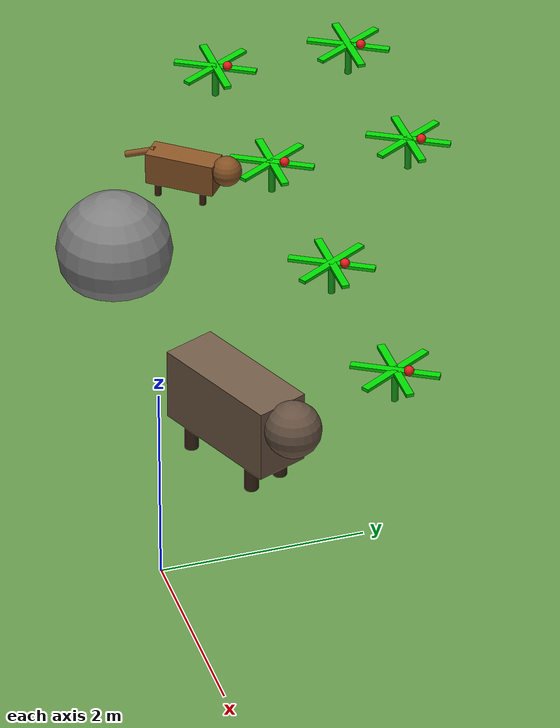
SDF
<sdf version="1.6">
 <world name="enhanced_farm_world">
  <include><uri>model://sun</uri></include>
  <model name="ground_plane">
   <static>true</static>
   <pose>0 0 -0.01 0 0 0</pose>
   <link name="link">
    <collision name="collision">
     <geometry><plane><normal>0 0 1</normal><size>200 200</size></plane></geometry>
     <surface><friction><ode><mu>0.8</mu><mu2>0.8</mu2></ode></friction></surface>
    </collision>
    <visual name="visual">
     <geometry><plane><normal>0 0 1</normal><size>200 200</size></plane></geometry>
     <material>
      <ambient>0.3 0.5 0.2 1</ambient>
      <diffuse>0.4 0.6 0.3 1</diffuse>
      <specular>0.01 0.01 0.01 1</specular>
     </material>
    </visual>
   </link>
  </model>
  <model name="crop_row1_1">
   <static>true</static>
   <pose>-8 3 0 0 0 0</pose>
   <link name="crop_stem">
    <pose>0 0 0.15 0 0 0</pose>
    <collision name="collision">
     <geometry><cylinder><radius>0.035</radius><length>0.30</length></cylinder></geometry>
    </collision>
    <visual name="visual">
     <geometry><cylinder><radius>0.035</radius><length>0.30</length></cylinder></geometry>
     <material><ambient>0.05 0.45 0.05 1</ambient><diffuse>0.08 0.65 0.08 1</diffuse></material>
    </visual>
   </link>
   <link name="leaf_1">
    <pose>0 0 0.35 0 0 0</pose>
    <visual name="visual">
     <geometry><box><size>0.90 0.08 0.035</size></box></geometry>
     <material><ambient>0.0 0.55 0.0 1</ambient><diffuse>0.0 0.85 0.0 1</diffuse></material>
    </visual>
   </link>
   <link name="leaf_2">
    <pose>0 0 0.35 0 0 1.047</pose>
    <visual name="visual">
     <geometry><box><size>0.90 0.08 0.035</size></box></geometry>
     <material><ambient>0.0 0.55 0.0 1</ambient><diffuse>0.0 0.85 0.0 1</diffuse></material>
    </visual>
   </link>
   <link name="leaf_3">
    <pose>0 0 0.35 0 0 2.094</pose>
    <visual name="visual">
     <geometry><box><size>0.90 0.08 0.035</size></box></geometry>
     <material><ambient>0.0 0.55 0.0 1</ambient><diffuse>0.0 0.85 0.0 1</diffuse></material>
    </visual>
   </link>
   <link name="small_fruit">
    <pose>0.18 0.08 0.45 0 0 0</pose>
    <visual name="visual">
     <geometry><sphere><radius>0.05</radius></sphere></geometry>
     <material><ambient>0.8 0.05 0.05 1</ambient><diffuse>0.9 0.1 0.1 1</diffuse></material>
    </visual>
   </link>
   <link name="crop_protection_collision">
    <pose>0 0 0.65 0 0 0</pose>
    <collision name="collision">
     <geometry><cylinder><radius>0.30</radius><length>1.30</length></cylinder></geometry>
    </collision>
   </link>
  </model>
  <model name="crop_row1_2">
   <static>true</static>
   <pose>-6 3 0 0 0 0</pose>
   <link name="crop_stem">
    <pose>0 0 0.15 0 0 0</pose>
    <collision name="collision">
     <geometry><cylinder><radius>0.035</radius><length>0.30</length></cylinder></geometry>
    </collision>
    <visual name="visual">
     <geometry><cylinder><radius>0.035</radius><length>0.30</length></cylinder></geometry>
     <material><ambient>0.05 0.45 0.05 1</ambient><diffuse>0.08 0.65 0.08 1</diffuse></material>
    </visual>
   </link>
   <link name="leaf_1">
    <pose>0 0 0.35 0 0 0</pose>
    <visual name="visual">
     <geometry><box><size>0.90 0.08 0.035</size></box></geometry>
     <material><ambient>0.0 0.55 0.0 1</ambient><diffuse>0.0 0.85 0.0 1</diffuse></material>
    </visual>
   </link>
   <link name="leaf_2">
    <pose>0 0 0.35 0 0 1.047</pose>
    <visual name="visual">
     <geometry><box><size>0.90 0.08 0.035</size></box></geometry>
     <material><ambient>0.0 0.55 0.0 1</ambient><diffuse>0.0 0.85 0.0 1</diffuse></material>
    </visual>
   </link>
   <link name="leaf_3">
    <pose>0 0 0.35 0 0 2.094</pose>
    <visual name="visual">
     <geometry><box><size>0.90 0.08 0.035</size></box></geometry>
     <material><ambient>0.0 0.55 0.0 1</ambient><diffuse>0.0 0.85 0.0 1</diffuse></material>
    </visual>
   </link>
   <link name="small_fruit">
    <pose>0.18 0.08 0.45 0 0 0</pose>
    <visual name="visual">
     <geometry><sphere><radius>0.05</radius></sphere></geometry>
     <material><ambient>0.8 0.05 0.05 1</ambient><diffuse>0.9 0.1 0.1 1</diffuse></material>
    </visual>
   </link>
   <link name="crop_protection_collision">
    <pose>0 0 0.65 0 0 0</pose>
    <collision name="collision">
     <geometry><cylinder><radius>0.30</radius><length>1.30</length></cylinder></geometry>
    </collision>
   </link>
  </model>
  <model name="crop_row1_3">
   <static>true</static>
   <pose>-4 3 0 0 0 0</pose>
   <link name="crop_stem">
    <pose>0 0 0.15 0 0 0</pose>
    <collision name="collision">
     <geometry><cylinder><radius>0.035</radius><length>0.30</length></cylinder></geometry>
    </collision>
    <visual name="visual">
     <geometry><cylinder><radius>0.035</radius><length>0.30</length></cylinder></geometry>
     <material><ambient>0.05 0.45 0.05 1</ambient><diffuse>0.08 0.65 0.08 1</diffuse></material>
    </visual>
   </link>
   <link name="leaf_1">
    <pose>0 0 0.35 0 0 0</pose>
    <visual name="visual">
     <geometry><box><size>0.90 0.08 0.035</size></box></geometry>
     <material><ambient>0.0 0.55 0.0 1</ambient><diffuse>0.0 0.85 0.0 1</diffuse></material>
    </visual>
   </link>
   <link name="leaf_2">
    <pose>0 0 0.35 0 0 1.047</pose>
    <visual name="visual">
     <geometry><box><size>0.90 0.08 0.035</size></box></geometry>
     <material><ambient>0.0 0.55 0.0 1</ambient><diffuse>0.0 0.85 0.0 1</diffuse></material>
    </visual>
   </link>
   <link name="leaf_3">
    <pose>0 0 0.35 0 0 2.094</pose>
    <visual name="visual">
     <geometry><box><size>0.90 0.08 0.035</size></box></geometry>
     <material><ambient>0.0 0.55 0.0 1</ambient><diffuse>0.0 0.85 0.0 1</diffuse></material>
    </visual>
   </link>
   <link name="small_fruit">
    <pose>0.18 0.08 0.45 0 0 0</pose>
    <visual name="visual">
     <geometry><sphere><radius>0.05</radius></sphere></geometry>
     <material><ambient>0.8 0.05 0.05 1</ambient><diffuse>0.9 0.1 0.1 1</diffuse></material>
    </visual>
   </link>
   <link name="crop_protection_collision">
    <pose>0 0 0.65 0 0 0</pose>
    <collision name="collision">
     <geometry><cylinder><radius>0.30</radius><length>1.30</length></cylinder></geometry>
    </collision>
   </link>
  </model>
  <model name="crop_row1_4">
   <static>true</static>
   <pose>-2 3 0 0 0 0</pose>
   <link name="crop_stem">
    <pose>0 0 0.15 0 0 0</pose>
    <collision name="collision">
     <geometry><cylinder><radius>0.035</radius><length>0.30</length></cylinder></geometry>
    </collision>
    <visual name="visual">
     <geometry><cylinder><radius>0.035</radius><length>0.30</length></cylinder></geometry>
     <material><ambient>0.05 0.45 0.05 1</ambient><diffuse>0.08 0.65 0.08 1</diffuse></material>
    </visual>
   </link>
   <link name="leaf_1">
    <pose>0 0 0.35 0 0 0</pose>
    <visual name="visual">
     <geometry><box><size>0.90 0.08 0.035</size></box></geometry>
     <material><ambient>0.0 0.55 0.0 1</ambient><diffuse>0.0 0.85 0.0 1</diffuse></material>
    </visual>
   </link>
   <link name="leaf_2">
    <pose>0 0 0.35 0 0 1.047</pose>
    <visual name="visual">
     <geometry><box><size>0.90 0.08 0.035</size></box></geometry>
     <material><ambient>0.0 0.55 0.0 1</ambient><diffuse>0.0 0.85 0.0 1</diffuse></material>
    </visual>
   </link>
   <link name="leaf_3">
    <pose>0 0 0.35 0 0 2.094</pose>
    <visual name="visual">
     <geometry><box><size>0.90 0.08 0.035</size></box></geometry>
     <material><ambient>0.0 0.55 0.0 1</ambient><diffuse>0.0 0.85 0.0 1</diffuse></material>
    </visual>
   </link>
   <link name="small_fruit">
    <pose>0.18 0.08 0.45 0 0 0</pose>
    <visual name="visual">
     <geometry><sphere><radius>0.05</radius></sphere></geometry>
     <material><ambient>0.8 0.05 0.05 1</ambient><diffuse>0.9 0.1 0.1 1</diffuse></material>
    </visual>
   </link>
   <link name="crop_protection_collision">
    <pose>0 0 0.65 0 0 0</pose>
    <collision name="collision">
     <geometry><cylinder><radius>0.30</radius><length>1.30</length></cylinder></geometry>
    </collision>
   </link>
  </model>
  <model name="crop_row2_1">
   <static>true</static>
   <pose>-8 4.5 0 0 0 0</pose>
   <link name="crop_stem">
    <pose>0 0 0.15 0 0 0</pose>
    <collision name="collision">
     <geometry><cylinder><radius>0.035</radius><length>0.30</length></cylinder></geometry>
    </collision>
    <visual name="visual">
     <geometry><cylinder><radius>0.035</radius><length>0.30</length></cylinder></geometry>
     <material><ambient>0.05 0.45 0.05 1</ambient><diffuse>0.08 0.65 0.08 1</diffuse></material>
    </visual>
   </link>
   <link name="leaf_1">
    <pose>0 0 0.35 0 0 0</pose>
    <visual name="visual">
     <geometry><box><size>0.90 0.08 0.035</size></box></geometry>
     <material><ambient>0.0 0.55 0.0 1</ambient><diffuse>0.0 0.85 0.0 1</diffuse></material>
    </visual>
   </link>
   <link name="leaf_2">
    <pose>0 0 0.35 0 0 1.047</pose>
    <visual name="visual">
     <geometry><box><size>0.90 0.08 0.035</size></box></geometry>
     <material><ambient>0.0 0.55 0.0 1</ambient><diffuse>0.0 0.85 0.0 1</diffuse></material>
    </visual>
   </link>
   <link name="leaf_3">
    <pose>0 0 0.35 0 0 2.094</pose>
    <visual name="visual">
     <geometry><box><size>0.90 0.08 0.035</size></box></geometry>
     <material><ambient>0.0 0.55 0.0 1</ambient><diffuse>0.0 0.85 0.0 1</diffuse></material>
    </visual>
   </link>
   <link name="small_fruit">
    <pose>0.18 0.08 0.45 0 0 0</pose>
    <visual name="visual">
     <geometry><sphere><radius>0.05</radius></sphere></geometry>
     <material><ambient>0.8 0.05 0.05 1</ambient><diffuse>0.9 0.1 0.1 1</diffuse></material>
    </visual>
   </link>
   <link name="crop_protection_collision">
    <pose>0 0 0.65 0 0 0</pose>
    <collision name="collision">
     <geometry><cylinder><radius>0.30</radius><length>1.30</length></cylinder></geometry>
    </collision>
   </link>
  </model>
  <model name="crop_row2_2">
   <static>true</static>
   <pose>-6 4.5 0 0 0 0</pose>
   <link name="crop_stem">
    <pose>0 0 0.15 0 0 0</pose>
    <collision name="collision">
     <geometry><cylinder><radius>0.035</radius><length>0.30</length></cylinder></geometry>
    </collision>
    <visual name="visual">
     <geometry><cylinder><radius>0.035</radius><length>0.30</length></cylinder></geometry>
     <material><ambient>0.05 0.45 0.05 1</ambient><diffuse>0.08 0.65 0.08 1</diffuse></material>
    </visual>
   </link>
   <link name="leaf_1">
    <pose>0 0 0.35 0 0 0</pose>
    <visual name="visual">
     <geometry><box><size>0.90 0.08 0.035</size></box></geometry>
     <material><ambient>0.0 0.55 0.0 1</ambient><diffuse>0.0 0.85 0.0 1</diffuse></material>
    </visual>
   </link>
   <link name="leaf_2">
    <pose>0 0 0.35 0 0 1.047</pose>
    <visual name="visual">
     <geometry><box><size>0.90 0.08 0.035</size></box></geometry>
     <material><ambient>0.0 0.55 0.0 1</ambient><diffuse>0.0 0.85 0.0 1</diffuse></material>
    </visual>
   </link>
   <link name="leaf_3">
    <pose>0 0 0.35 0 0 2.094</pose>
    <visual name="visual">
     <geometry><box><size>0.90 0.08 0.035</size></box></geometry>
     <material><ambient>0.0 0.55 0.0 1</ambient><diffuse>0.0 0.85 0.0 1</diffuse></material>
    </visual>
   </link>
   <link name="small_fruit">
    <pose>0.18 0.08 0.45 0 0 0</pose>
    <visual name="visual">
     <geometry><sphere><radius>0.05</radius></sphere></geometry>
     <material><ambient>0.8 0.05 0.05 1</ambient><diffuse>0.9 0.1 0.1 1</diffuse></material>
    </visual>
   </link>
   <link name="crop_protection_collision">
    <pose>0 0 0.65 0 0 0</pose>
    <collision name="collision">
     <geometry><cylinder><radius>0.30</radius><length>1.30</length></cylinder></geometry>
    </collision>
   </link>
  </model>
  <model name="rock_1">
   <static>true</static>
   <pose>-5 1 0.3 0 0 0</pose>
   <link name="link">
    <collision name="collision"><geometry><sphere><radius>0.6</radius></sphere></geometry></collision>
    <visual name="visual">
     <geometry><sphere><radius>0.6</radius></sphere></geometry>
     <material><diffuse>0.5 0.5 0.5 1</diffuse></material>
    </visual>
   </link>
  </model>
  <model name="cow_1">
   <static>false</static>
   <pose>-1.5 1.2 0 0 0 0.4</pose>
   <link name="body">
    <gravity>false</gravity>
    <kinematic>true</kinematic>
    <collision name="body_collision">
     <pose>0 0 0.65 0 0 0</pose>
     <geometry><box><size>1.4 0.55 0.75</size></box></geometry>
    </collision>
    <visual name="body_visual">
     <pose>0 0 0.65 0 0 0</pose>
     <geometry><box><size>1.4 0.55 0.75</size></box></geometry>
     <material><ambient>0.35 0.28 0.22 1</ambient><diffuse>0.45 0.36 0.28 1</diffuse></material>
    </visual>
    <collision name="head_collision">
     <pose>0.85 0 0.82 0 0 0</pose>
     <geometry><sphere><radius>0.28</radius></sphere></geometry>
    </collision>
    <visual name="head_visual">
     <pose>0.85 0 0.82 0 0 0</pose>
     <geometry><sphere><radius>0.28</radius></sphere></geometry>
     <material><ambient>0.30 0.24 0.20 1</ambient><diffuse>0.40 0.32 0.26 1</diffuse></material>
    </visual>
    <collision name="leg1_collision">
     <pose>-0.45 -0.18 0.25 0 0 0</pose>
     <geometry><cylinder><radius>0.07</radius><length>0.50</length></cylinder></geometry>
    </collision>
    <visual name="leg1_visual">
     <pose>-0.45 -0.18 0.25 0 0 0</pose>
     <geometry><cylinder><radius>0.07</radius><length>0.50</length></cylinder></geometry>
     <material><ambient>0.18 0.12 0.08 1</ambient><diffuse>0.22 0.15 0.09 1</diffuse></material>
    </visual>
    <collision name="leg2_collision">
     <pose>-0.45 0.18 0.25 0 0 0</pose>
     <geometry><cylinder><radius>0.07</radius><length>0.50</length></cylinder></geometry>
    </collision>
    <visual name="leg2_visual">
     <pose>-0.45 0.18 0.25 0 0 0</pose>
     <geometry><cylinder><radius>0.07</radius><length>0.50</length></cylinder></geometry>
     <material><ambient>0.18 0.12 0.08 1</ambient><diffuse>0.22 0.15 0.09 1</diffuse></material>
    </visual>
    <collision name="leg3_collision">
     <pose>0.45 -0.18 0.25 0 0 0</pose>
     <geometry><cylinder><radius>0.07</radius><length>0.50</length></cylinder></geometry>
    </collision>
    <visual name="leg3_visual">
     <pose>0.45 -0.18 0.25 0 0 0</pose>
     <geometry><cylinder><radius>0.07</radius><length>0.50</length></cylinder></geometry>
     <material><ambient>0.18 0.12 0.08 1</ambient><diffuse>0.22 0.15 0.09 1</diffuse></material>
    </visual>
    <collision name="leg4_collision">
     <pose>0.45 0.18 0.25 0 0 0</pose>
     <geometry><cylinder><radius>0.07</radius><length>0.50</length></cylinder></geometry>
    </collision>
    <visual name="leg4_visual">
     <pose>0.45 0.18 0.25 0 0 0</pose>
     <geometry><cylinder><radius>0.07</radius><length>0.50</length></cylinder></geometry>
     <material><ambient>0.18 0.12 0.08 1</ambient><diffuse>0.22 0.15 0.09 1</diffuse></material>
    </visual>
   </link>
  </model>
  <model name="dog_1">
   <static>false</static>
   <pose>-6.2 2.1 0 0 0 0.9</pose>
   <link name="body">
    <gravity>false</gravity>
    <kinematic>true</kinematic>
    <collision name="body_collision">
     <pose>0 0 0.32 0 0 0</pose>
     <geometry><box><size>0.75 0.28 0.35</size></box></geometry>
    </collision>
    <visual name="body_visual">
     <pose>0 0 0.32 0 0 0</pose>
     <geometry><box><size>0.75 0.28 0.35</size></box></geometry>
     <material><ambient>0.45 0.28 0.12 1</ambient><diffuse>0.55 0.34 0.15 1</diffuse></material>
    </visual>
    <collision name="head_collision">
     <pose>0.48 0 0.40 0 0 0</pose>
     <geometry><sphere><radius>0.16</radius></sphere></geometry>
    </collision>
    <visual name="head_visual">
     <pose>0.48 0 0.40 0 0 0</pose>
     <geometry><sphere><radius>0.16</radius></sphere></geometry>
     <material><ambient>0.42 0.25 0.10 1</ambient><diffuse>0.52 0.32 0.14 1</diffuse></material>
    </visual>
    <collision name="tail_collision">
     <pose>-0.48 0 0.42 0 1.2 0</pose>
     <geometry><cylinder><radius>0.035</radius><length>0.35</length></cylinder></geometry>
    </collision>
    <visual name="tail_visual">
     <pose>-0.48 0 0.42 0 1.2 0</pose>
     <geometry><cylinder><radius>0.035</radius><length>0.35</length></cylinder></geometry>
     <material><ambient>0.45 0.28 0.12 1</ambient><diffuse>0.55 0.34 0.15 1</diffuse></material>
    </visual>
    <collision name="leg1_collision">
     <pose>-0.25 -0.1 0.13 0 0 0</pose>
     <geometry><cylinder><radius>0.035</radius><length>0.25</length></cylinder></geometry>
    </collision>
    <visual name="leg1_visual">
     <pose>-0.25 -0.1 0.13 0 0 0</pose>
     <geometry><cylinder><radius>0.035</radius><length>0.25</length></cylinder></geometry>
     <material><ambient>0.18 0.10 0.05 1</ambient><diffuse>0.25 0.14 0.06 1</diffuse></material>
    </visual>
    <collision name="leg2_collision">
     <pose>-0.25 0.1 0.13 0 0 0</pose>
     <geometry><cylinder><radius>0.035</radius><length>0.25</length></cylinder></geometry>
    </collision>
    <visual name="leg2_visual">
     <pose>-0.25 0.1 0.13 0 0 0</pose>
     <geometry><cylinder><radius>0.035</radius><length>0.25</length></cylinder></geometry>
     <material><ambient>0.18 0.10 0.05 1</ambient><diffuse>0.25 0.14 0.06 1</diffuse></material>
    </visual>
    <collision name="leg3_collision">
     <pose>0.25 -0.1 0.13 0 0 0</pose>
     <geometry><cylinder><radius>0.035</radius><length>0.25</length></cylinder></geometry>
    </collision>
    <visual name="leg3_visual">
     <pose>0.25 -0.1 0.13 0 0 0</pose>
     <geometry><cylinder><radius>0.035</radius><length>0.25</length></cylinder></geometry>
     <material><ambient>0.18 0.10 0.05 1</ambient><diffuse>0.25 0.14 0.06 1</diffuse></material>
    </visual>
    <collision name="leg4_collision">
     <pose>0.25 0.1 0.13 0 0 0</pose>
     <geometry><cylinder><radius>0.035</radius><length>0.25</length></cylinder></geometry>
    </collision>
    <visual name="leg4_visual">
     <pose>0.25 0.1 0.13 0 0 0</pose>
     <geometry><cylinder><radius>0.035</radius><length>0.25</length></cylinder></geometry>
     <material><ambient>0.18 0.10 0.05 1</ambient><diffuse>0.25 0.14 0.06 1</diffuse></material>
    </visual>
   </link>
  </model>
 </world>
</sdf>
